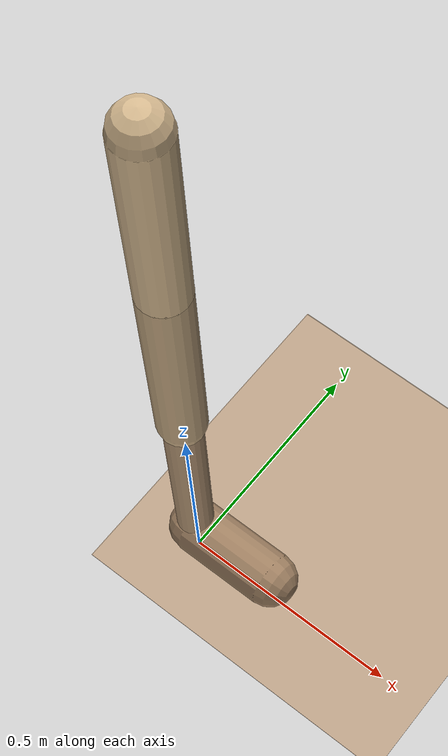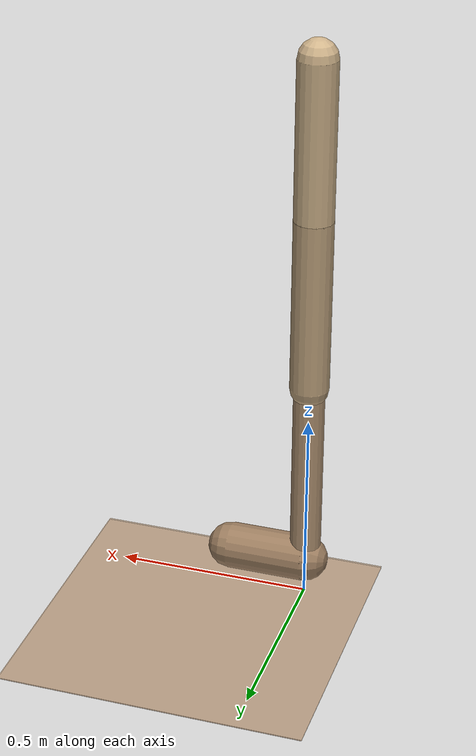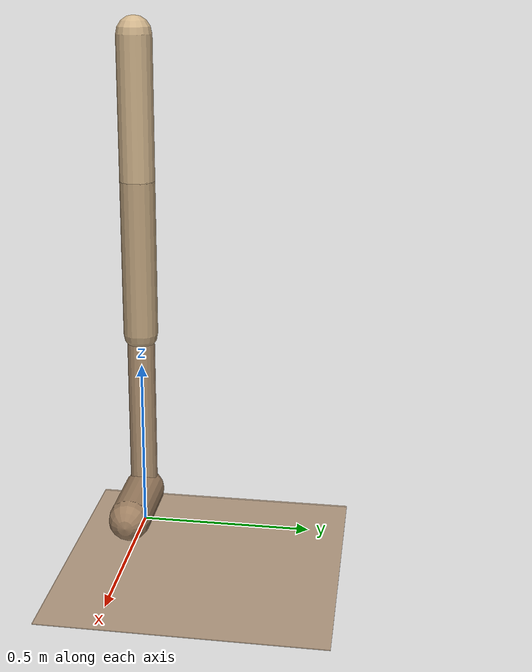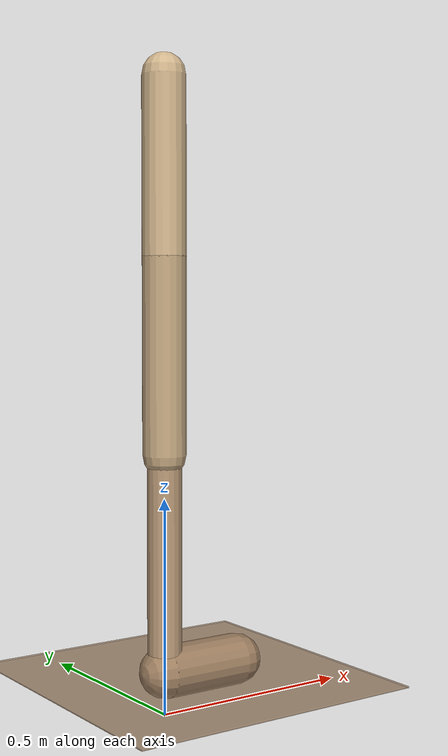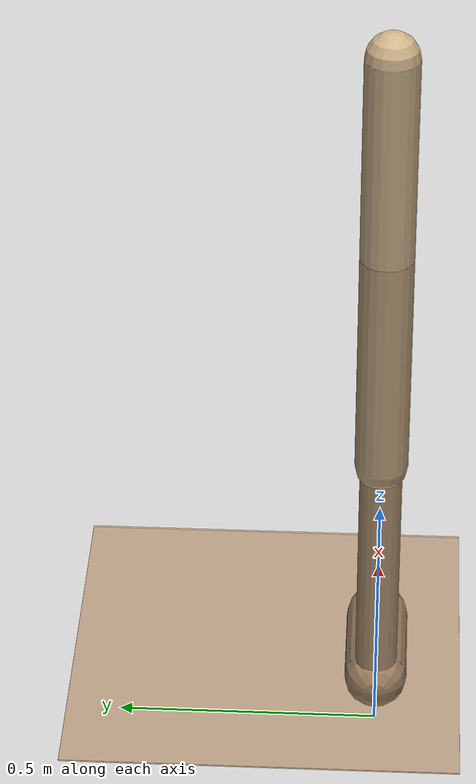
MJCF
<mujoco model="walker2d">
  <compiler angle="radian" autolimits="true"/>
  <default>
    <joint limited="true" armature="0.01" damping="0.1"/>
    <geom contype="0" conaffinity="0" friction="0.7 0.1 0.1" rgba="0.75 0.65 0.55 0.8"/>
  </default>
  <!-- Removed RK4 integrator for brax. ls_iterations default is 50, but we should lower it
       https://mujoco.readthedocs.io/en/3.11.0/mjx.html#performance-tuning -->
  <option timestep="0.002" iterations="4" ls_iterations="6" gravity="0 0 -6.5"/>
  <custom>
    <!-- brax custom params -->
    <numeric data="5000" name="constraint_limit_stiffness"/>
    <numeric data="10000" name="constraint_stiffness"/>
    <numeric data="20" name="constraint_ang_damping"/>
    <numeric data="1" name="vel_damping"/>
    <numeric data="-0.05" name="ang_damping"/>
    <numeric data="0" name="spring_mass_scale"/>
    <numeric data="1" name="spring_inertia_scale"/>
    <numeric data="15" name="solver_maxls"/>
    <numeric data="20" name="matrix_inv_iterations"/>
  </custom>
  <worldbody>
    <geom name="floor" size="40 40 40" type="plane" conaffinity="1" material="MatPlane"/>
    <geom name="track" type="box" size="40 1.0 0.001" pos="0 0 0.0012" material="MatTrack" contype="0" conaffinity="0"/>
    <light pos="0 0 3" dir="0 0 -1" directional="true" cutoff="100" exponent="1" diffuse="1 1 1" specular="0.3 0.3 0.3"/>

    <body name="torso" pos="0 0 1.25">
      <site name="agent" rgba="1 0 0 .1"/>
      <camera name="vision" pos="0 0 .15" xyaxes="0 -1 0 .4 0 1" fovy="90"/>
      <camera name="vision_back" pos="0 0 .15" xyaxes="0 1 0 0 0 1" fovy="90"/>

      <!-- Brax does not support stacked joints at different locations, so we move rootx and rootz
        from (0, 0, 0) to the rooty position at (0, 0, 1.25). Joint ref was also removed. -->
      <joint name="rootx" pos="0 0 0" axis="1 0 0" limited="false" type="slide" armature="0" damping="0"/>
      <joint name="rootz" pos="0 0 0" axis="0 0 1" limited="false" type="slide" armature="0" damping="0"/>
      <joint name="rooty" pos="0 0 0" axis="0 1 0" limited="false" armature="0" damping="0"/>
      <geom name="torso_geom" size="0.05 0.2" type="capsule" contype="1" friction="0.9 0.1 0.1" rgba="0.82 0.71 0.55 1.0"/>
      <camera name="fixedfar" pos="0 -5 5" zaxis="0 -1 1" mode="trackcom"/>
      <camera name="track" pos="0 -3 -0.25" quat="0.707107 0.707107 0 0" mode="trackcom"/>
      <body name="thigh" pos="0 0 -0.2">
        <joint name="thigh_joint" pos="0 0 0" axis="0 -1 0" range="-2.61799 0"/>
        <geom name="thigh_geom" size="0.05 0.225" pos="0 0 -0.225" type="capsule" friction="0.9 0.1 0.1" rgba="0.76 0.65 0.50 1.0"/>
        <body name="leg" pos="0 0 -0.7">
          <joint name="leg_joint" pos="0 0 0.25" axis="0 -1 0" range="-2.61799 0"/>
          <geom name="leg_geom" size="0.04 0.25" type="capsule" friction="0.9 0.1 0.1" rgba="0.70 0.58 0.45 1.0"/>
          <body name="foot" pos="0.2 0 -0.35">
            <joint name="foot_joint" pos="-0.2 0 0.1" axis="0 -1 0" range="-0.785398 0.785398"/>
            <geom name="foot_geom" size="0.06 0.1" pos="-0.1 0 0.1" quat="0.707107 0 -0.707107 0" type="capsule" contype="1" friction="0.9 0.1 0.1" rgba="0.62 0.50 0.38 1.0"/>
            <!-- Violation indicator (visual only, initially transparent) -->
            <geom name="indicator_foot" type="sphere" size="0.12" pos="-0.1 0 0.05" contype="0" conaffinity="0" rgba="1 0.2 0.8 0" mass="0"/>
          </body>
        </body>
      </body>
      <body name="thigh_left" pos="0 0 -0.2">
        <joint name="thigh_left_joint" pos="0 0 0" axis="0 -1 0" range="-2.61799 0"/>
        <geom name="thigh_left_geom" size="0.05 0.225" pos="0 0 -0.225" type="capsule" friction="0.9 0.1 0.1" rgba="0.76 0.65 0.50 1.0"/>
        <body name="leg_left" pos="0 0 -0.7">
          <joint name="leg_left_joint" pos="0 0 0.25" axis="0 -1 0" range="-2.61799 0"/>
          <geom name="leg_left_geom" size="0.04 0.25" type="capsule" friction="0.9 0.1 0.1" rgba="0.70 0.58 0.45 1.0"/>
          <body name="foot_left" pos="0.2 0 -0.35">
            <joint name="foot_left_joint" pos="-0.2 0 0.1" axis="0 -1 0" range="-0.785398 0.785398"/>
            <geom name="foot_left_geom" size="0.06 0.1" pos="-0.1 0 0.1" quat="0.707107 0 -0.707107 0" type="capsule" contype="1" friction="1.9 0.1 0.1" rgba="0.62 0.50 0.38 1.0"/>
            <!-- Violation indicator (visual only, initially transparent) -->
            <geom name="indicator_foot_left" type="sphere" size="0.12" pos="-0.1 0 0.05" contype="0" conaffinity="0" rgba="1 0.2 0.8 0" mass="0"/>
          </body>
        </body>
      </body>
    </body>
  </worldbody>
    <!-- Used for observation -->
    <sensor>
    <accelerometer site="agent" name="accelerometer"/>
    <velocimeter site="agent" name="velocimeter"/>
    <gyro site="agent" name="gyro"/>
    <magnetometer site="agent" name="magnetometer"/>

    <!-- Used for intrinsic constraints -->
    <subtreecom body="torso" name="subtreecom"/>
    <subtreelinvel body="torso" name="subtreelinvel"/>
    <subtreeangmom body="torso" name="subtreeangmom"/>
  </sensor>

  <actuator>
    <motor ctrlrange="-1.0 1.0" gear="100" joint="thigh_joint"/>
    <motor ctrlrange="-1.0 1.0" gear="100" joint="leg_joint"/>
    <motor ctrlrange="-1.0 1.0" gear="100" joint="foot_joint"/>
    <motor ctrlrange="-1.0 1.0" gear="100" joint="thigh_left_joint"/>
    <motor ctrlrange="-1.0 1.0" gear="100" joint="leg_left_joint"/>
    <motor ctrlrange="-1.0 1.0" gear="100" joint="foot_left_joint"/>
  </actuator>
  <asset>
      <texture type="skybox" builtin="gradient" rgb1=".45 .50 .55" rgb2="0.1 0.1 0.12" width="100" height="100"/>
      <texture builtin="flat" height="1278" mark="cross" markrgb="1 1 1" name="texgeom" random="0.01" rgb1="0.6 0.6 0.6" rgb2="0.6 0.6 0.6" type="cube" width="127"/>
      <texture builtin="checker" height="100" name="texplane" rgb1="0.72 0.72 0.72" rgb2="0.68 0.68 0.68" type="2d" width="100"/>
      <material name="MatPlane" reflectance="0.2" shininess="0.1" specular="0.1" texrepeat="60 60" texture="texplane"/>
      <material name="MatTrack" rgba="0.75 0.75 0.75 0.4" reflectance="0.1" shininess="0.05" specular="0.02"/>
      <material name="geom" texture="texgeom" texuniform="true"/>
  </asset>
</mujoco>
